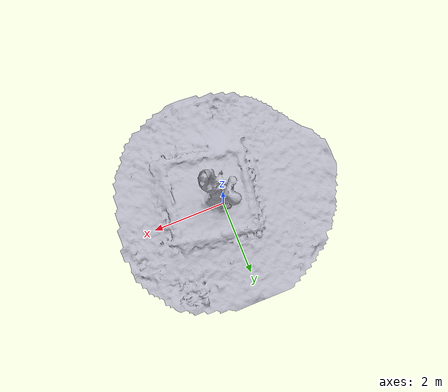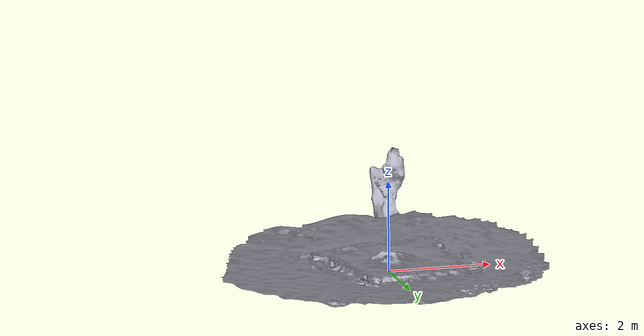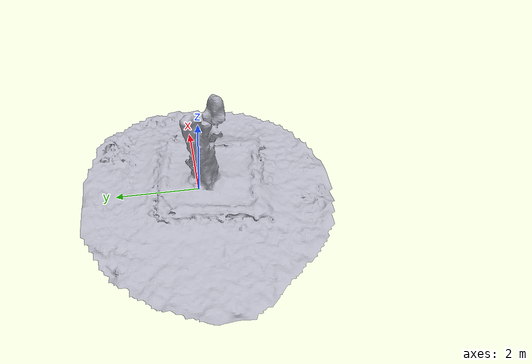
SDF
<?xml version="1.0"?>
<sdf version="1.6">
  <model name="S5_4">
    <pose>0 0 0 0 0 0</pose>
    <static>true</static>

    <link name="link">
      <!-- 视觉外观 -->
      <visual name="visual">
        <geometry>
          <mesh>
            <uri>model://S5_4.stl</uri>
            <scale>1.0 1.0 1.0</scale>
          </mesh>
        </geometry>
        <material>
          <ambient>0.7 0.7 0.75 1</ambient>
          <diffuse>0.7 0.7 0.75 1</diffuse>
          <specular>0.3 0.3 0.3 1</specular>
        </material>
      </visual>

      <!-- 碰撞几何体 -->
      <collision name="collision">
        <geometry>
          <mesh>
            <uri>model://S5_4.stl</uri>
            <scale>1.0 1.0 1.0</scale>
          </mesh>
        </geometry>
      </collision>

      <!-- 物理属性 (static模型，惯性参数仅占位) -->
      <inertial>
        <mass>10.0</mass>
        <pose>-0.1632 -0.2040 1.1442 0 0 0</pose>
        <inertia>
          <ixx>5.0</ixx>
          <ixy>0.0</ixy>
          <ixz>0.0</ixz>
          <iyy>5.0</iyy>
          <iyz>0.0</iyz>
          <izz>5.0</izz>
        </inertia>
      </inertial>
    </link>
  </model>
</sdf>
